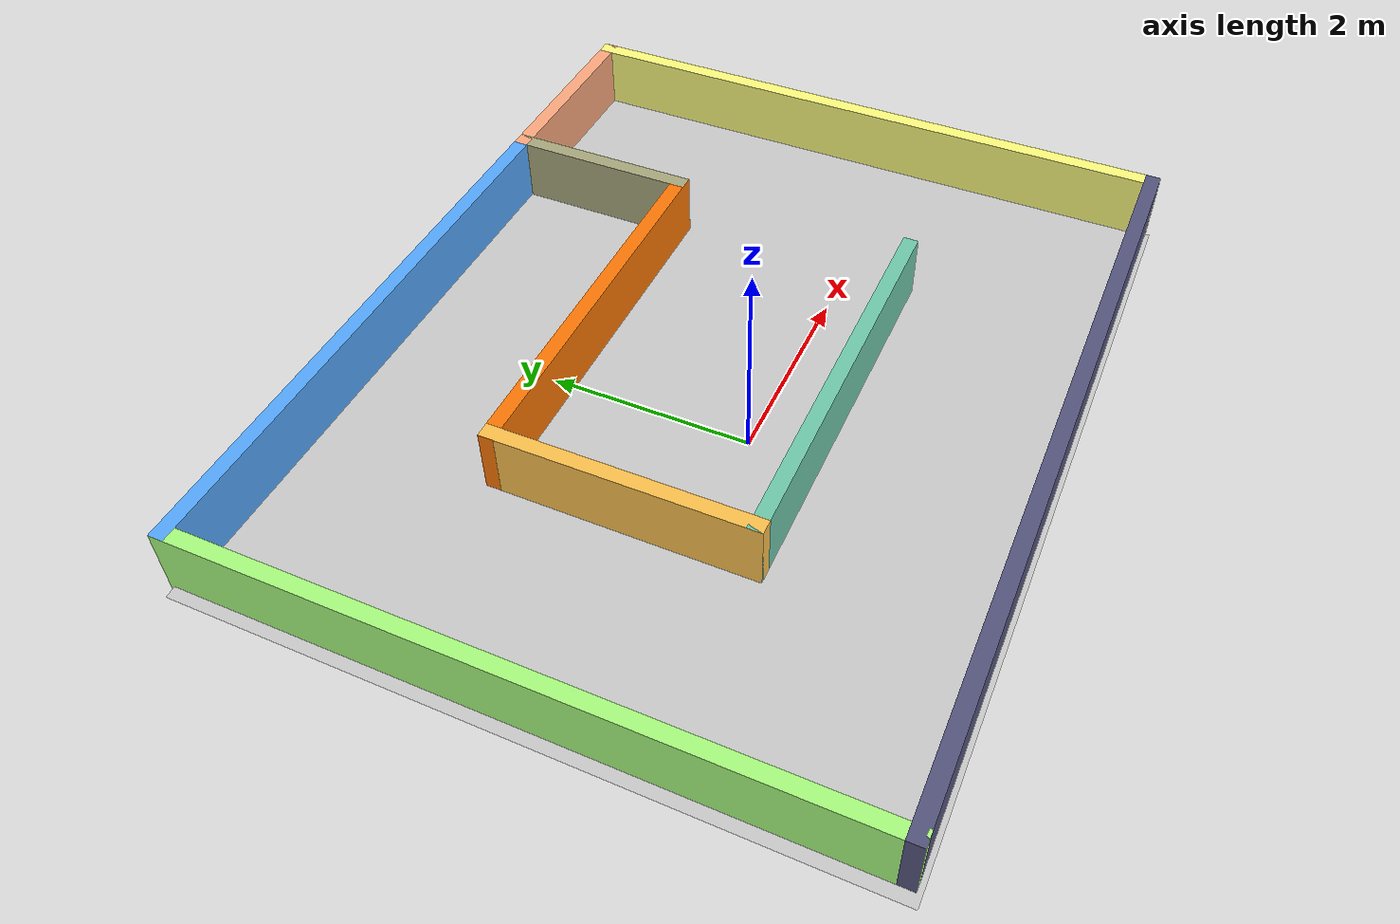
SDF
<sdf version="1.6">
 <world name="default">
  <light name="sun" type="directional">
   <pose>0 0 10 0 -0 0</pose>
   <diffuse>0.8 0.8 0.8 1</diffuse>
   <specular>0.1 0.1 0.1 1</specular>
   <attenuation>
    <range>1000</range>
    <constant>0.9</constant>
    <linear>0.01</linear>
    <quadratic>0.001</quadratic>
   </attenuation>
   <direction>-0.5 0.5 -1</direction>
  </light>
  <model name="parquet2_plane">
   <static>1</static>
   <link name="parquet2_plane_link">
    <collision name="collision_parquet2">
     <geometry><plane><size>8 6.5</size><size>5 5</size><normal>0 0 1</normal></plane></geometry>
     <surface><friction><ode><mu>0.5</mu><mu2>0.5</mu2></ode></friction></surface>
    </collision>
    <visual name="visual_parquet2">
     <pose>0.5 0.5 0 0 -0 0</pose>
     <cast_shadows>0</cast_shadows>
     <geometry><plane><normal>0 0 1</normal><size>8 6.5</size></plane></geometry>
     <material>
      <script>
       <uri>model://floor_parquet2/materials/scripts</uri>
       <uri>model://floor_parquet2/materials/textures</uri>
       <name>vrc/parquet2</name>
      </script>
     </material>
    </visual>
   </link>
  </model>
  <gravity>0 0 -9.8</gravity>
  <magnetic_field>6e-06 2.3e-05 -4.2e-05</magnetic_field>
  <atmosphere type="adiabatic"/>
  <physics name="default_physics" default="0" type="ode">
   <max_step_size>0.001</max_step_size>
   <real_time_factor>1</real_time_factor>
   <real_time_update_rate>1000</real_time_update_rate>
  </physics>
  <scene><ambient>0.4 0.4 0.4 1</ambient><background>0.7 0.7 0.7 1</background><shadows>1</shadows></scene>
  <spherical_coordinates>
   <surface_model>EARTH_WGS84</surface_model>
   <latitude_deg>0</latitude_deg>
   <longitude_deg>0</longitude_deg>
   <elevation>0</elevation>
   <heading_deg>0</heading_deg>
  </spherical_coordinates>
  <model name="maze_home">
   <pose>0.615 0.545 0 0 -0 0</pose>
   <link name="Wall_0">
    <collision name="Wall_0_Collision">
     <geometry><box><size>8 0.15 0.8</size></box></geometry>
     <pose>0 0 0.25 0 -0 0</pose>
    </collision>
    <visual name="Wall_0_Visual">
     <pose>0 0 0.25 0 -0 0</pose>
     <geometry><box><size>8 0.15 0.8</size></box></geometry>
     <material>
      <script><uri>file://media/materials/scripts/gazebo.material</uri><name>Gazebo/Grey</name></script>
      <ambient>0.333333 0.333333 0.498039 1</ambient>
     </material>
    </visual>
    <pose>0 -3.175 0 0 -0 0</pose>
   </link>
   <link name="Wall_1">
    <collision name="Wall_1_Collision">
     <geometry><box><size>6.5 0.15 0.8</size></box></geometry>
     <pose>0 0 0.25 0 -0 0</pose>
    </collision>
    <visual name="Wall_1_Visual">
     <pose>0 0 0.25 0 -0 0</pose>
     <geometry><box><size>6.5 0.15 0.8</size></box></geometry>
     <material>
      <script><uri>file://media/materials/scripts/gazebo.material</uri><name>Gazebo/Grey</name></script>
      <ambient>1 1 0.498039 1</ambient>
     </material>
    </visual>
    <pose>3.925 0 0 0 -0 1.5708</pose>
   </link>
   <link name="Wall_11">
    <collision name="Wall_11_Collision">
     <geometry><box><size>2.15 0.15 0.8</size></box></geometry>
     <pose>0 0 0.25 0 -0 0</pose>
    </collision>
    <visual name="Wall_11_Visual">
     <pose>0 0 0.25 0 -0 0</pose>
     <geometry><box><size>2.15 0.15 0.8</size></box></geometry>
     <material>
      <script><uri>file://media/materials/scripts/gazebo.material</uri><name>Gazebo/Grey</name></script>
      <ambient>1 0.666667 0.498039 1</ambient>
     </material>
    </visual>
    <pose>2.925 3.175 0 0 -0 3.14159</pose>
   </link>
   <link name="Wall_13">
    <collision name="Wall_13_Collision">
     <geometry><box><size>2 0.15 0.8</size></box></geometry>
     <pose>0 0 0.25 0 -0 0</pose>
    </collision>
    <visual name="Wall_13_Visual">
     <pose>0 0 0.25 0 -0 0</pose>
     <geometry><box><size>2 0.15 0.8</size></box></geometry>
     <material>
      <script><uri>file://media/materials/scripts/gazebo.material</uri><name>Gazebo/Grey</name></script>
      <ambient>0.666667 0.666667 0.498039 1</ambient>
     </material>
    </visual>
    <pose>1.925 2.25 0 0 0 -1.5708</pose>
   </link>
   <link name="Wall_14">
    <collision name="Wall_14_Collision">
     <geometry><box><size>4 0.15 0.8</size></box></geometry>
     <pose>0 0 0.25 0 -0 0</pose>
    </collision>
    <visual name="Wall_14_Visual">
     <pose>0 0 0.25 0 -0 0</pose>
     <geometry><box><size>4 0.15 0.8</size></box></geometry>
     <material>
      <script><uri>file://media/materials/scripts/gazebo.material</uri><name>Gazebo/Grey</name></script>
      <ambient>0.996078 0.47451 0.0196078 1</ambient>
     </material>
    </visual>
    <pose>0 1.325 0 0 -0 3.14159</pose>
   </link>
   <link name="Wall_3">
    <collision name="Wall_3_Collision">
     <geometry><box><size>2.65 0.15 0.8</size></box></geometry>
     <pose>0 0 0.25 0 -0 0</pose>
    </collision>
    <visual name="Wall_3_Visual">
     <pose>0 0 0.25 0 -0 0</pose>
     <geometry><box><size>2.65 0.15 0.8</size></box></geometry>
     <material>
      <script><uri>file://media/materials/scripts/gazebo.material</uri><name>Gazebo/Grey</name></script>
      <ambient>1 0.764706 0.305882 1</ambient>
     </material>
    </visual>
    <pose>-1.925 0.075 0 0 0 -1.5708</pose>
   </link>
   <link name="Wall_4">
    <collision name="Wall_4_Collision">
     <geometry><box><size>4 0.15 0.8</size></box></geometry>
     <pose>0 0 0.25 0 -0 0</pose>
    </collision>
    <visual name="Wall_4_Visual">
     <pose>0 0 0.25 0 -0 0</pose>
     <geometry><box><size>4 0.15 0.8</size></box></geometry>
     <material>
      <script><uri>file://media/materials/scripts/gazebo.material</uri><name>Gazebo/Grey</name></script>
      <ambient>0.435294 0.796078 0.67451 1</ambient>
     </material>
    </visual>
    <pose>0 -1.175 0 0 -0 0</pose>
   </link>
   <link name="Wall_6">
    <collision name="Wall_6_Collision">
     <geometry><box><size>6.5 0.15 0.8</size></box></geometry>
     <pose>0 0 0.25 0 -0 0</pose>
    </collision>
    <visual name="Wall_6_Visual">
     <pose>0 0 0.25 0 -0 0</pose>
     <geometry><box><size>6.5 0.15 0.8</size></box></geometry>
     <material>
      <script><uri>file://media/materials/scripts/gazebo.material</uri><name>Gazebo/Grey</name></script>
      <ambient>0.666667 1 0.498039 1</ambient>
     </material>
    </visual>
    <pose>-3.925 0 0 0 -0 1.5708</pose>
   </link>
   <link name="Wall_7">
    <collision name="Wall_7_Collision">
     <geometry><box><size>6 0.15 0.8</size></box></geometry>
     <pose>0 0 0.25 0 -0 0</pose>
    </collision>
    <visual name="Wall_7_Visual">
     <pose>0 0 0.25 0 -0 0</pose>
     <geometry><box><size>6 0.15 0.8</size></box></geometry>
     <material>
      <script><uri>file://media/materials/scripts/gazebo.material</uri><name>Gazebo/Grey</name></script>
      <ambient>0.333333 0.666667 1 1</ambient>
     </material>
    </visual>
    <pose>-1 3.175 0 0 -0 0</pose>
   </link>
   <static>1</static>
  </model>
 </world>
</sdf>
